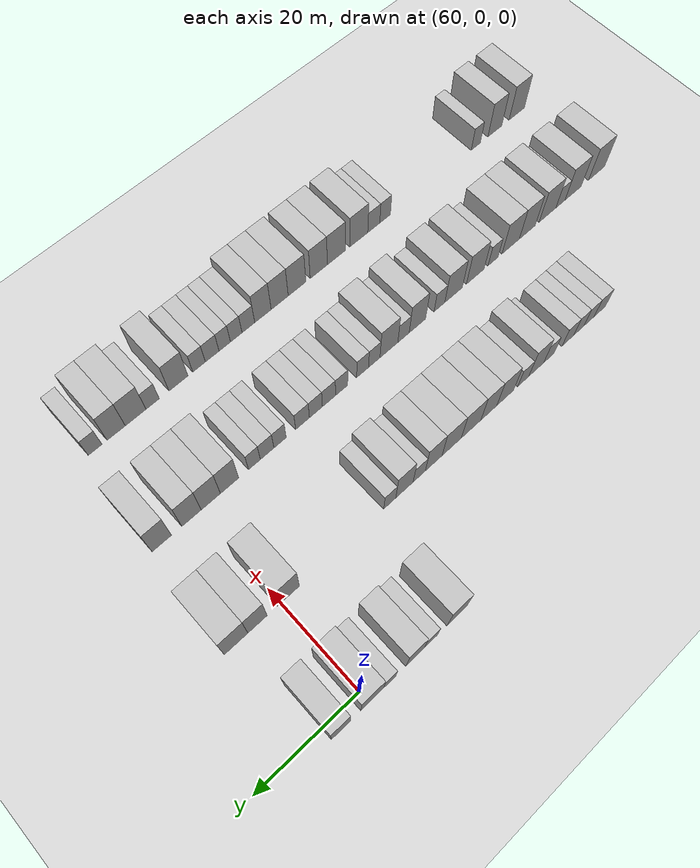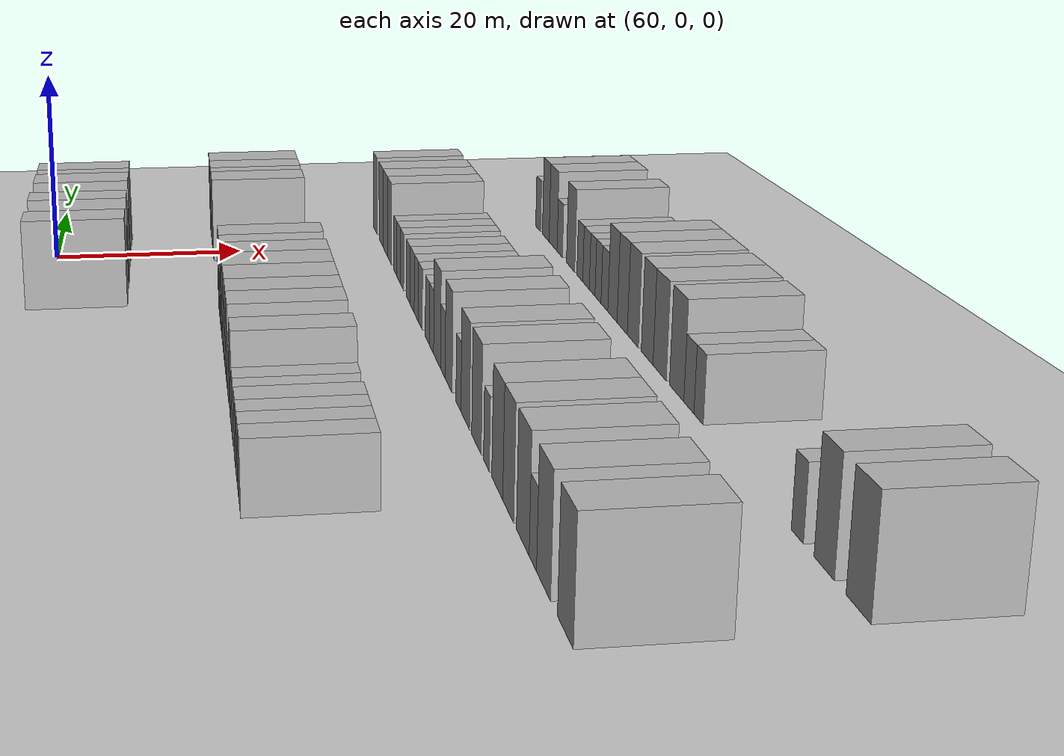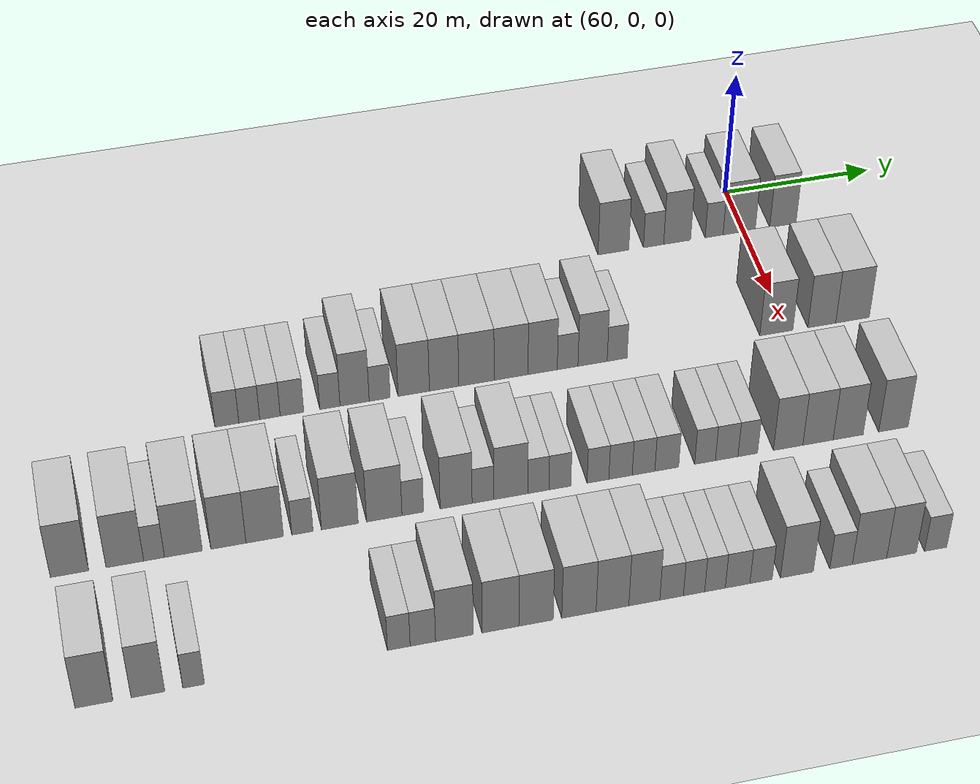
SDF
<sdf version="1.6">
 <world name="default">
  <include>
   <name>ground_plane_2</name>
   <uri>model://HANNAS_ground_plane</uri>
   <pose>100 0 0  0 0 0</pose>
  </include>
  <model name="building_432">
   <static>1</static>
   <pose>63.0000 -17.7571 0 0.000000 0.000000 0.000000</pose>
   <link name="link">
    <pose>0 0 4.50 0 0 0</pose>
    <collision name="collision"><geometry><box><size>10.0000 4.1584 9.0000</size></box></geometry></collision>
    <visual name="visual">
     <cast_shadows>0</cast_shadows>
     <geometry><box><size>10.0000 4.1584 9.0000</size></box></geometry>
     <material>
      <script>
       <uri>model://HANNAS_wall/materials/scripts</uri>
       <uri>model://HANNAS_wall/materials/textures</uri>
       <name>vrc/HANNAS_wall</name>
      </script>
     </material>
    </visual>
   </link>
  </model>
  <model name="building_433">
   <static>1</static>
   <pose>63.0000 -12.3101 0 0.000000 0.000000 0.000000</pose>
   <link name="link">
    <pose>0 0 3.00 0 0 0</pose>
    <collision name="collision"><geometry><box><size>10.0000 2.7355 6.0000</size></box></geometry></collision>
    <visual name="visual">
     <cast_shadows>0</cast_shadows>
     <geometry><box><size>10.0000 2.7355 6.0000</size></box></geometry>
     <material>
      <script>
       <uri>model://HANNAS_wall/materials/scripts</uri>
       <uri>model://HANNAS_wall/materials/textures</uri>
       <name>vrc/HANNAS_wall</name>
      </script>
     </material>
    </visual>
   </link>
  </model>
  <model name="building_434">
   <static>1</static>
   <pose>63.0000 -9.1037 0 0.000000 0.000000 0.000000</pose>
   <link name="link">
    <pose>0 0 4.50 0 0 0</pose>
    <collision name="collision"><geometry><box><size>10.0000 3.6774 9.0000</size></box></geometry></collision>
    <visual name="visual">
     <cast_shadows>0</cast_shadows>
     <geometry><box><size>10.0000 3.6774 9.0000</size></box></geometry>
     <material>
      <script>
       <uri>model://HANNAS_wall/materials/scripts</uri>
       <uri>model://HANNAS_wall/materials/textures</uri>
       <name>vrc/HANNAS_wall</name>
      </script>
     </material>
    </visual>
   </link>
  </model>
  <model name="building_435">
   <static>1</static>
   <pose>63.0000 -4.0407 0 0.000000 0.000000 0.000000</pose>
   <link name="link">
    <pose>0 0 3.00 0 0 0</pose>
    <collision name="collision"><geometry><box><size>10.0000 2.4487 6.0000</size></box></geometry></collision>
    <visual name="visual">
     <cast_shadows>0</cast_shadows>
     <geometry><box><size>10.0000 2.4487 6.0000</size></box></geometry>
     <material>
      <script>
       <uri>model://HANNAS_wall/materials/scripts</uri>
       <uri>model://HANNAS_wall/materials/textures</uri>
       <name>vrc/HANNAS_wall</name>
      </script>
     </material>
    </visual>
   </link>
  </model>
  <model name="building_436">
   <static>1</static>
   <pose>63.0000 -0.6007 0 0.000000 0.000000 0.000000</pose>
   <link name="link">
    <pose>0 0 4.50 0 0 0</pose>
    <collision name="collision"><geometry><box><size>10.0000 4.4313 9.0000</size></box></geometry></collision>
    <visual name="visual">
     <cast_shadows>0</cast_shadows>
     <geometry><box><size>10.0000 4.4313 9.0000</size></box></geometry>
     <material>
      <script>
       <uri>model://HANNAS_wall/materials/scripts</uri>
       <uri>model://HANNAS_wall/materials/textures</uri>
       <name>vrc/HANNAS_wall</name>
      </script>
     </material>
    </visual>
   </link>
  </model>
  <model name="building_437">
   <static>1</static>
   <pose>63.0000 5.4301 0 0.000000 0.000000 0.000000</pose>
   <link name="link">
    <pose>0 0 4.50 0 0 0</pose>
    <collision name="collision"><geometry><box><size>10.0000 3.6302 9.0000</size></box></geometry></collision>
    <visual name="visual">
     <cast_shadows>0</cast_shadows>
     <geometry><box><size>10.0000 3.6302 9.0000</size></box></geometry>
     <material>
      <script>
       <uri>model://HANNAS_wall/materials/scripts</uri>
       <uri>model://HANNAS_wall/materials/textures</uri>
       <name>vrc/HANNAS_wall</name>
      </script>
     </material>
    </visual>
   </link>
  </model>
  <model name="building_573">
   <static>1</static>
   <pose>82.0000 -71.5166 0 0.000000 0.000000 0.000000</pose>
   <link name="link">
    <pose>0 0 3.00 0 0 0</pose>
    <collision name="collision"><geometry><box><size>10.0000 2.9342 6.0000</size></box></geometry></collision>
    <visual name="visual">
     <cast_shadows>0</cast_shadows>
     <geometry><box><size>10.0000 2.9342 6.0000</size></box></geometry>
     <material>
      <script>
       <uri>model://HANNAS_wall/materials/scripts</uri>
       <uri>model://HANNAS_wall/materials/textures</uri>
       <name>vrc/HANNAS_wall</name>
      </script>
     </material>
    </visual>
   </link>
  </model>
  <model name="building_574">
   <static>1</static>
   <pose>82.0000 -68.7672 0 0.000000 0.000000 0.000000</pose>
   <link name="link">
    <pose>0 0 3.00 0 0 0</pose>
    <collision name="collision"><geometry><box><size>10.0000 2.5647 6.0000</size></box></geometry></collision>
    <visual name="visual">
     <cast_shadows>0</cast_shadows>
     <geometry><box><size>10.0000 2.5647 6.0000</size></box></geometry>
     <material>
      <script>
       <uri>model://HANNAS_wall/materials/scripts</uri>
       <uri>model://HANNAS_wall/materials/textures</uri>
       <name>vrc/HANNAS_wall</name>
      </script>
     </material>
    </visual>
   </link>
  </model>
  <model name="building_575">
   <static>1</static>
   <pose>82.0000 -66.2163 0 0.000000 0.000000 0.000000</pose>
   <link name="link">
    <pose>0 0 3.00 0 0 0</pose>
    <collision name="collision"><geometry><box><size>10.0000 2.5372 6.0000</size></box></geometry></collision>
    <visual name="visual">
     <cast_shadows>0</cast_shadows>
     <geometry><box><size>10.0000 2.5372 6.0000</size></box></geometry>
     <material>
      <script>
       <uri>model://HANNAS_wall/materials/scripts</uri>
       <uri>model://HANNAS_wall/materials/textures</uri>
       <name>vrc/HANNAS_wall</name>
      </script>
     </material>
    </visual>
   </link>
  </model>
  <model name="building_576">
   <static>1</static>
   <pose>82.0000 -63.4958 0 0.000000 0.000000 0.000000</pose>
   <link name="link">
    <pose>0 0 3.00 0 0 0</pose>
    <collision name="collision"><geometry><box><size>10.0000 2.9037 6.0000</size></box></geometry></collision>
    <visual name="visual">
     <cast_shadows>0</cast_shadows>
     <geometry><box><size>10.0000 2.9037 6.0000</size></box></geometry>
     <material>
      <script>
       <uri>model://HANNAS_wall/materials/scripts</uri>
       <uri>model://HANNAS_wall/materials/textures</uri>
       <name>vrc/HANNAS_wall</name>
      </script>
     </material>
    </visual>
   </link>
  </model>
  <model name="building_577">
   <static>1</static>
   <pose>82.0000 -58.7861 0 0.000000 0.000000 0.000000</pose>
   <link name="link">
    <pose>0 0 3.00 0 0 0</pose>
    <collision name="collision"><geometry><box><size>10.0000 2.5158 6.0000</size></box></geometry></collision>
    <visual name="visual">
     <cast_shadows>0</cast_shadows>
     <geometry><box><size>10.0000 2.5158 6.0000</size></box></geometry>
     <material>
      <script>
       <uri>model://HANNAS_wall/materials/scripts</uri>
       <uri>model://HANNAS_wall/materials/textures</uri>
       <name>vrc/HANNAS_wall</name>
      </script>
     </material>
    </visual>
   </link>
  </model>
  <model name="building_578">
   <static>1</static>
   <pose>82.0000 -55.7071 0 0.000000 0.000000 0.000000</pose>
   <link name="link">
    <pose>0 0 4.50 0 0 0</pose>
    <collision name="collision"><geometry><box><size>10.0000 3.6423 9.0000</size></box></geometry></collision>
    <visual name="visual">
     <cast_shadows>0</cast_shadows>
     <geometry><box><size>10.0000 3.6423 9.0000</size></box></geometry>
     <material>
      <script>
       <uri>model://HANNAS_wall/materials/scripts</uri>
       <uri>model://HANNAS_wall/materials/textures</uri>
       <name>vrc/HANNAS_wall</name>
      </script>
     </material>
    </visual>
   </link>
  </model>
  <model name="building_579">
   <static>1</static>
   <pose>82.0000 -52.5766 0 0.000000 0.000000 0.000000</pose>
   <link name="link">
    <pose>0 0 3.00 0 0 0</pose>
    <collision name="collision"><geometry><box><size>10.0000 2.6185 6.0000</size></box></geometry></collision>
    <visual name="visual">
     <cast_shadows>0</cast_shadows>
     <geometry><box><size>10.0000 2.6185 6.0000</size></box></geometry>
     <material>
      <script>
       <uri>model://HANNAS_wall/materials/scripts</uri>
       <uri>model://HANNAS_wall/materials/textures</uri>
       <name>vrc/HANNAS_wall</name>
      </script>
     </material>
    </visual>
   </link>
  </model>
  <model name="building_580">
   <static>1</static>
   <pose>82.0000 -48.2945 0 0.000000 0.000000 0.000000</pose>
   <link name="link">
    <pose>0 0 4.50 0 0 0</pose>
    <collision name="collision"><geometry><box><size>10.0000 3.9458 9.0000</size></box></geometry></collision>
    <visual name="visual">
     <cast_shadows>0</cast_shadows>
     <geometry><box><size>10.0000 3.9458 9.0000</size></box></geometry>
     <material>
      <script>
       <uri>model://HANNAS_wall/materials/scripts</uri>
       <uri>model://HANNAS_wall/materials/textures</uri>
       <name>vrc/HANNAS_wall</name>
      </script>
     </material>
    </visual>
   </link>
  </model>
  <model name="building_581">
   <static>1</static>
   <pose>82.0000 -44.4660 0 0.000000 0.000000 0.000000</pose>
   <link name="link">
    <pose>0 0 4.50 0 0 0</pose>
    <collision name="collision"><geometry><box><size>10.0000 3.7112 9.0000</size></box></geometry></collision>
    <visual name="visual">
     <cast_shadows>0</cast_shadows>
     <geometry><box><size>10.0000 3.7112 9.0000</size></box></geometry>
     <material>
      <script>
       <uri>model://HANNAS_wall/materials/scripts</uri>
       <uri>model://HANNAS_wall/materials/textures</uri>
       <name>vrc/HANNAS_wall</name>
      </script>
     </material>
    </visual>
   </link>
  </model>
  <model name="building_582">
   <static>1</static>
   <pose>82.0000 -40.3728 0 0.000000 0.000000 0.000000</pose>
   <link name="link">
    <pose>0 0 4.50 0 0 0</pose>
    <collision name="collision"><geometry><box><size>10.0000 4.4752 9.0000</size></box></geometry></collision>
    <visual name="visual">
     <cast_shadows>0</cast_shadows>
     <geometry><box><size>10.0000 4.4752 9.0000</size></box></geometry>
     <material>
      <script>
       <uri>model://HANNAS_wall/materials/scripts</uri>
       <uri>model://HANNAS_wall/materials/textures</uri>
       <name>vrc/HANNAS_wall</name>
      </script>
     </material>
    </visual>
   </link>
  </model>
  <model name="building_583">
   <static>1</static>
   <pose>82.0000 -35.9753 0 0.000000 0.000000 0.000000</pose>
   <link name="link">
    <pose>0 0 4.50 0 0 0</pose>
    <collision name="collision"><geometry><box><size>10.0000 4.3197 9.0000</size></box></geometry></collision>
    <visual name="visual">
     <cast_shadows>0</cast_shadows>
     <geometry><box><size>10.0000 4.3197 9.0000</size></box></geometry>
     <material>
      <script>
       <uri>model://HANNAS_wall/materials/scripts</uri>
       <uri>model://HANNAS_wall/materials/textures</uri>
       <name>vrc/HANNAS_wall</name>
      </script>
     </material>
    </visual>
   </link>
  </model>
  <model name="building_584">
   <static>1</static>
   <pose>82.0000 -31.9392 0 0.000000 0.000000 0.000000</pose>
   <link name="link">
    <pose>0 0 4.50 0 0 0</pose>
    <collision name="collision"><geometry><box><size>10.0000 3.7526 9.0000</size></box></geometry></collision>
    <visual name="visual">
     <cast_shadows>0</cast_shadows>
     <geometry><box><size>10.0000 3.7526 9.0000</size></box></geometry>
     <material>
      <script>
       <uri>model://HANNAS_wall/materials/scripts</uri>
       <uri>model://HANNAS_wall/materials/textures</uri>
       <name>vrc/HANNAS_wall</name>
      </script>
     </material>
    </visual>
   </link>
  </model>
  <model name="building_585">
   <static>1</static>
   <pose>82.0000 -28.7332 0 0.000000 0.000000 0.000000</pose>
   <link name="link">
    <pose>0 0 3.00 0 0 0</pose>
    <collision name="collision"><geometry><box><size>10.0000 2.6593 6.0000</size></box></geometry></collision>
    <visual name="visual">
     <cast_shadows>0</cast_shadows>
     <geometry><box><size>10.0000 2.6593 6.0000</size></box></geometry>
     <material>
      <script>
       <uri>model://HANNAS_wall/materials/scripts</uri>
       <uri>model://HANNAS_wall/materials/textures</uri>
       <name>vrc/HANNAS_wall</name>
      </script>
     </material>
    </visual>
   </link>
  </model>
  <model name="building_586">
   <static>1</static>
   <pose>82.0000 -25.5226 0 0.000000 0.000000 0.000000</pose>
   <link name="link">
    <pose>0 0 4.50 0 0 0</pose>
    <collision name="collision"><geometry><box><size>10.0000 3.7619 9.0000</size></box></geometry></collision>
    <visual name="visual">
     <cast_shadows>0</cast_shadows>
     <geometry><box><size>10.0000 3.7619 9.0000</size></box></geometry>
     <material>
      <script>
       <uri>model://HANNAS_wall/materials/scripts</uri>
       <uri>model://HANNAS_wall/materials/textures</uri>
       <name>vrc/HANNAS_wall</name>
      </script>
     </material>
    </visual>
   </link>
  </model>
  <model name="building_587">
   <static>1</static>
   <pose>82.0000 -22.3545 0 0.000000 0.000000 0.000000</pose>
   <link name="link">
    <pose>0 0 3.00 0 0 0</pose>
    <collision name="collision"><geometry><box><size>10.0000 2.5743 6.0000</size></box></geometry></collision>
    <visual name="visual">
     <cast_shadows>0</cast_shadows>
     <geometry><box><size>10.0000 2.5743 6.0000</size></box></geometry>
     <material>
      <script>
       <uri>model://HANNAS_wall/materials/scripts</uri>
       <uri>model://HANNAS_wall/materials/textures</uri>
       <name>vrc/HANNAS_wall</name>
      </script>
     </material>
    </visual>
   </link>
  </model>
  <model name="building_588">
   <static>1</static>
   <pose>82.0000 -1.5267 0 0.000000 0.000000 0.000000</pose>
   <link name="link">
    <pose>0 0 4.50 0 0 0</pose>
    <collision name="collision"><geometry><box><size>10.0000 4.3604 9.0000</size></box></geometry></collision>
    <visual name="visual">
     <cast_shadows>0</cast_shadows>
     <geometry><box><size>10.0000 4.3604 9.0000</size></box></geometry>
     <material>
      <script>
       <uri>model://HANNAS_wall/materials/scripts</uri>
       <uri>model://HANNAS_wall/materials/textures</uri>
       <name>vrc/HANNAS_wall</name>
      </script>
     </material>
    </visual>
   </link>
  </model>
  <model name="building_589">
   <static>1</static>
   <pose>82.0000 4.5028 0 0.000000 0.000000 0.000000</pose>
   <link name="link">
    <pose>0 0 4.50 0 0 0</pose>
    <collision name="collision"><geometry><box><size>10.0000 3.6985 9.0000</size></box></geometry></collision>
    <visual name="visual">
     <cast_shadows>0</cast_shadows>
     <geometry><box><size>10.0000 3.6985 9.0000</size></box></geometry>
     <material>
      <script>
       <uri>model://HANNAS_wall/materials/scripts</uri>
       <uri>model://HANNAS_wall/materials/textures</uri>
       <name>vrc/HANNAS_wall</name>
      </script>
     </material>
    </visual>
   </link>
  </model>
  <model name="building_590">
   <static>1</static>
   <pose>82.0000 8.5935 0 0.000000 0.000000 0.000000</pose>
   <link name="link">
    <pose>0 0 4.50 0 0 0</pose>
    <collision name="collision"><geometry><box><size>10.0000 4.4828 9.0000</size></box></geometry></collision>
    <visual name="visual">
     <cast_shadows>0</cast_shadows>
     <geometry><box><size>10.0000 4.4828 9.0000</size></box></geometry>
     <material>
      <script>
       <uri>model://HANNAS_wall/materials/scripts</uri>
       <uri>model://HANNAS_wall/materials/textures</uri>
       <name>vrc/HANNAS_wall</name>
      </script>
     </material>
    </visual>
   </link>
  </model>
  <model name="building_725">
   <static>1</static>
   <pose>101.0000 -92.6124 0 0.000000 0.000000 0.000000</pose>
   <link name="link">
    <pose>0 0 4.50 0 0 0</pose>
    <collision name="collision"><geometry><box><size>10.0000 4.3998 9.0000</size></box></geometry></collision>
    <visual name="visual">
     <cast_shadows>0</cast_shadows>
     <geometry><box><size>10.0000 4.3998 9.0000</size></box></geometry>
     <material>
      <script>
       <uri>model://HANNAS_wall/materials/scripts</uri>
       <uri>model://HANNAS_wall/materials/textures</uri>
       <name>vrc/HANNAS_wall</name>
      </script>
     </material>
    </visual>
   </link>
  </model>
  <model name="building_726">
   <static>1</static>
   <pose>101.0000 -86.2340 0 0.000000 0.000000 0.000000</pose>
   <link name="link">
    <pose>0 0 4.50 0 0 0</pose>
    <collision name="collision"><geometry><box><size>10.0000 4.3569 9.0000</size></box></geometry></collision>
    <visual name="visual">
     <cast_shadows>0</cast_shadows>
     <geometry><box><size>10.0000 4.3569 9.0000</size></box></geometry>
     <material>
      <script>
       <uri>model://HANNAS_wall/materials/scripts</uri>
       <uri>model://HANNAS_wall/materials/textures</uri>
       <name>vrc/HANNAS_wall</name>
      </script>
     </material>
    </visual>
   </link>
  </model>
  <model name="building_727">
   <static>1</static>
   <pose>101.0000 -82.8504 0 0.000000 0.000000 0.000000</pose>
   <link name="link">
    <pose>0 0 3.00 0 0 0</pose>
    <collision name="collision"><geometry><box><size>10.0000 2.4102 6.0000</size></box></geometry></collision>
    <visual name="visual">
     <cast_shadows>0</cast_shadows>
     <geometry><box><size>10.0000 2.4102 6.0000</size></box></geometry>
     <material>
      <script>
       <uri>model://HANNAS_wall/materials/scripts</uri>
       <uri>model://HANNAS_wall/materials/textures</uri>
       <name>vrc/HANNAS_wall</name>
      </script>
     </material>
    </visual>
   </link>
  </model>
  <model name="building_728">
   <static>1</static>
   <pose>101.0000 -79.4442 0 0.000000 0.000000 0.000000</pose>
   <link name="link">
    <pose>0 0 4.50 0 0 0</pose>
    <collision name="collision"><geometry><box><size>10.0000 4.4023 9.0000</size></box></geometry></collision>
    <visual name="visual">
     <cast_shadows>0</cast_shadows>
     <geometry><box><size>10.0000 4.4023 9.0000</size></box></geometry>
     <material>
      <script>
       <uri>model://HANNAS_wall/materials/scripts</uri>
       <uri>model://HANNAS_wall/materials/textures</uri>
       <name>vrc/HANNAS_wall</name>
      </script>
     </material>
    </visual>
   </link>
  </model>
  <model name="building_729">
   <static>1</static>
   <pose>101.0000 -74.1869 0 0.000000 0.000000 0.000000</pose>
   <link name="link">
    <pose>0 0 4.50 0 0 0</pose>
    <collision name="collision"><geometry><box><size>10.0000 4.1122 9.0000</size></box></geometry></collision>
    <visual name="visual">
     <cast_shadows>0</cast_shadows>
     <geometry><box><size>10.0000 4.1122 9.0000</size></box></geometry>
     <material>
      <script>
       <uri>model://HANNAS_wall/materials/scripts</uri>
       <uri>model://HANNAS_wall/materials/textures</uri>
       <name>vrc/HANNAS_wall</name>
      </script>
     </material>
    </visual>
   </link>
  </model>
  <model name="building_730">
   <static>1</static>
   <pose>101.0000 -69.9293 0 0.000000 0.000000 0.000000</pose>
   <link name="link">
    <pose>0 0 4.50 0 0 0</pose>
    <collision name="collision"><geometry><box><size>10.0000 4.4031 9.0000</size></box></geometry></collision>
    <visual name="visual">
     <cast_shadows>0</cast_shadows>
     <geometry><box><size>10.0000 4.4031 9.0000</size></box></geometry>
     <material>
      <script>
       <uri>model://HANNAS_wall/materials/scripts</uri>
       <uri>model://HANNAS_wall/materials/textures</uri>
       <name>vrc/HANNAS_wall</name>
      </script>
     </material>
    </visual>
   </link>
  </model>
  <model name="building_731">
   <static>1</static>
   <pose>101.0000 -65.4733 0 0.000000 0.000000 0.000000</pose>
   <link name="link">
    <pose>0 0 3.00 0 0 0</pose>
    <collision name="collision"><geometry><box><size>10.0000 2.5089 6.0000</size></box></geometry></collision>
    <visual name="visual">
     <cast_shadows>0</cast_shadows>
     <geometry><box><size>10.0000 2.5089 6.0000</size></box></geometry>
     <material>
      <script>
       <uri>model://HANNAS_wall/materials/scripts</uri>
       <uri>model://HANNAS_wall/materials/textures</uri>
       <name>vrc/HANNAS_wall</name>
      </script>
     </material>
    </visual>
   </link>
  </model>
  <model name="building_732">
   <static>1</static>
   <pose>101.0000 -61.0356 0 0.000000 0.000000 0.000000</pose>
   <link name="link">
    <pose>0 0 4.50 0 0 0</pose>
    <collision name="collision"><geometry><box><size>10.0000 4.3665 9.0000</size></box></geometry></collision>
    <visual name="visual">
     <cast_shadows>0</cast_shadows>
     <geometry><box><size>10.0000 4.3665 9.0000</size></box></geometry>
     <material>
      <script>
       <uri>model://HANNAS_wall/materials/scripts</uri>
       <uri>model://HANNAS_wall/materials/textures</uri>
       <name>vrc/HANNAS_wall</name>
      </script>
     </material>
    </visual>
   </link>
  </model>
  <model name="building_733">
   <static>1</static>
   <pose>101.0000 -55.7341 0 0.000000 0.000000 0.000000</pose>
   <link name="link">
    <pose>0 0 4.50 0 0 0</pose>
    <collision name="collision"><geometry><box><size>10.0000 4.2363 9.0000</size></box></geometry></collision>
    <visual name="visual">
     <cast_shadows>0</cast_shadows>
     <geometry><box><size>10.0000 4.2363 9.0000</size></box></geometry>
     <material>
      <script>
       <uri>model://HANNAS_wall/materials/scripts</uri>
       <uri>model://HANNAS_wall/materials/textures</uri>
       <name>vrc/HANNAS_wall</name>
      </script>
     </material>
    </visual>
   </link>
  </model>
  <model name="building_734">
   <static>1</static>
   <pose>101.0000 -52.3248 0 0.000000 0.000000 0.000000</pose>
   <link name="link">
    <pose>0 0 3.00 0 0 0</pose>
    <collision name="collision"><geometry><box><size>10.0000 2.5824 6.0000</size></box></geometry></collision>
    <visual name="visual">
     <cast_shadows>0</cast_shadows>
     <geometry><box><size>10.0000 2.5824 6.0000</size></box></geometry>
     <material>
      <script>
       <uri>model://HANNAS_wall/materials/scripts</uri>
       <uri>model://HANNAS_wall/materials/textures</uri>
       <name>vrc/HANNAS_wall</name>
      </script>
     </material>
    </visual>
   </link>
  </model>
  <model name="building_735">
   <static>1</static>
   <pose>101.0000 -47.1033 0 0.000000 0.000000 0.000000</pose>
   <link name="link">
    <pose>0 0 4.50 0 0 0</pose>
    <collision name="collision"><geometry><box><size>10.0000 3.8606 9.0000</size></box></geometry></collision>
    <visual name="visual">
     <cast_shadows>0</cast_shadows>
     <geometry><box><size>10.0000 3.8606 9.0000</size></box></geometry>
     <material>
      <script>
       <uri>model://HANNAS_wall/materials/scripts</uri>
       <uri>model://HANNAS_wall/materials/textures</uri>
       <name>vrc/HANNAS_wall</name>
      </script>
     </material>
    </visual>
   </link>
  </model>
  <model name="building_736">
   <static>1</static>
   <pose>101.0000 -43.8539 0 0.000000 0.000000 0.000000</pose>
   <link name="link">
    <pose>0 0 3.00 0 0 0</pose>
    <collision name="collision"><geometry><box><size>10.0000 2.6380 6.0000</size></box></geometry></collision>
    <visual name="visual">
     <cast_shadows>0</cast_shadows>
     <geometry><box><size>10.0000 2.6380 6.0000</size></box></geometry>
     <material>
      <script>
       <uri>model://HANNAS_wall/materials/scripts</uri>
       <uri>model://HANNAS_wall/materials/textures</uri>
       <name>vrc/HANNAS_wall</name>
      </script>
     </material>
    </visual>
   </link>
  </model>
  <model name="building_737">
   <static>1</static>
   <pose>101.0000 -40.4781 0 0.000000 0.000000 0.000000</pose>
   <link name="link">
    <pose>0 0 4.50 0 0 0</pose>
    <collision name="collision"><geometry><box><size>10.0000 4.1135 9.0000</size></box></geometry></collision>
    <visual name="visual">
     <cast_shadows>0</cast_shadows>
     <geometry><box><size>10.0000 4.1135 9.0000</size></box></geometry>
     <material>
      <script>
       <uri>model://HANNAS_wall/materials/scripts</uri>
       <uri>model://HANNAS_wall/materials/textures</uri>
       <name>vrc/HANNAS_wall</name>
      </script>
     </material>
    </visual>
   </link>
  </model>
  <model name="building_738">
   <static>1</static>
   <pose>101.0000 -37.1306 0 0.000000 0.000000 0.000000</pose>
   <link name="link">
    <pose>0 0 3.00 0 0 0</pose>
    <collision name="collision"><geometry><box><size>10.0000 2.5815 6.0000</size></box></geometry></collision>
    <visual name="visual">
     <cast_shadows>0</cast_shadows>
     <geometry><box><size>10.0000 2.5815 6.0000</size></box></geometry>
     <material>
      <script>
       <uri>model://HANNAS_wall/materials/scripts</uri>
       <uri>model://HANNAS_wall/materials/textures</uri>
       <name>vrc/HANNAS_wall</name>
      </script>
     </material>
    </visual>
   </link>
  </model>
  <model name="building_739">
   <static>1</static>
   <pose>101.0000 -34.4963 0 0.000000 0.000000 0.000000</pose>
   <link name="link">
    <pose>0 0 3.00 0 0 0</pose>
    <collision name="collision"><geometry><box><size>10.0000 2.6871 6.0000</size></box></geometry></collision>
    <visual name="visual">
     <cast_shadows>0</cast_shadows>
     <geometry><box><size>10.0000 2.6871 6.0000</size></box></geometry>
     <material>
      <script>
       <uri>model://HANNAS_wall/materials/scripts</uri>
       <uri>model://HANNAS_wall/materials/textures</uri>
       <name>vrc/HANNAS_wall</name>
      </script>
     </material>
    </visual>
   </link>
  </model>
  <model name="building_740">
   <static>1</static>
   <pose>101.0000 -29.8143 0 0.000000 0.000000 0.000000</pose>
   <link name="link">
    <pose>0 0 3.00 0 0 0</pose>
    <collision name="collision"><geometry><box><size>10.0000 2.6769 6.0000</size></box></geometry></collision>
    <visual name="visual">
     <cast_shadows>0</cast_shadows>
     <geometry><box><size>10.0000 2.6769 6.0000</size></box></geometry>
     <material>
      <script>
       <uri>model://HANNAS_wall/materials/scripts</uri>
       <uri>model://HANNAS_wall/materials/textures</uri>
       <name>vrc/HANNAS_wall</name>
      </script>
     </material>
    </visual>
   </link>
  </model>
  <model name="building_741">
   <static>1</static>
   <pose>101.0000 -27.0326 0 0.000000 0.000000 0.000000</pose>
   <link name="link">
    <pose>0 0 3.00 0 0 0</pose>
    <collision name="collision"><geometry><box><size>10.0000 2.8863 6.0000</size></box></geometry></collision>
    <visual name="visual">
     <cast_shadows>0</cast_shadows>
     <geometry><box><size>10.0000 2.8863 6.0000</size></box></geometry>
     <material>
      <script>
       <uri>model://HANNAS_wall/materials/scripts</uri>
       <uri>model://HANNAS_wall/materials/textures</uri>
       <name>vrc/HANNAS_wall</name>
      </script>
     </material>
    </visual>
   </link>
  </model>
  <model name="building_742">
   <static>1</static>
   <pose>101.0000 -24.1850 0 0.000000 0.000000 0.000000</pose>
   <link name="link">
    <pose>0 0 3.00 0 0 0</pose>
    <collision name="collision"><geometry><box><size>10.0000 2.8089 6.0000</size></box></geometry></collision>
    <visual name="visual">
     <cast_shadows>0</cast_shadows>
     <geometry><box><size>10.0000 2.8089 6.0000</size></box></geometry>
     <material>
      <script>
       <uri>model://HANNAS_wall/materials/scripts</uri>
       <uri>model://HANNAS_wall/materials/textures</uri>
       <name>vrc/HANNAS_wall</name>
      </script>
     </material>
    </visual>
   </link>
  </model>
  <model name="building_743">
   <static>1</static>
   <pose>101.0000 -21.3042 0 0.000000 0.000000 0.000000</pose>
   <link name="link">
    <pose>0 0 3.00 0 0 0</pose>
    <collision name="collision"><geometry><box><size>10.0000 2.9528 6.0000</size></box></geometry></collision>
    <visual name="visual">
     <cast_shadows>0</cast_shadows>
     <geometry><box><size>10.0000 2.9528 6.0000</size></box></geometry>
     <material>
      <script>
       <uri>model://HANNAS_wall/materials/scripts</uri>
       <uri>model://HANNAS_wall/materials/textures</uri>
       <name>vrc/HANNAS_wall</name>
      </script>
     </material>
    </visual>
   </link>
  </model>
  <model name="building_744">
   <static>1</static>
   <pose>101.0000 -16.5339 0 0.000000 0.000000 0.000000</pose>
   <link name="link">
    <pose>0 0 3.00 0 0 0</pose>
    <collision name="collision"><geometry><box><size>10.0000 2.5878 6.0000</size></box></geometry></collision>
    <visual name="visual">
     <cast_shadows>0</cast_shadows>
     <geometry><box><size>10.0000 2.5878 6.0000</size></box></geometry>
     <material>
      <script>
       <uri>model://HANNAS_wall/materials/scripts</uri>
       <uri>model://HANNAS_wall/materials/textures</uri>
       <name>vrc/HANNAS_wall</name>
      </script>
     </material>
    </visual>
   </link>
  </model>
  <model name="building_745">
   <static>1</static>
   <pose>101.0000 -13.8236 0 0.000000 0.000000 0.000000</pose>
   <link name="link">
    <pose>0 0 3.00 0 0 0</pose>
    <collision name="collision"><geometry><box><size>10.0000 2.8328 6.0000</size></box></geometry></collision>
    <visual name="visual">
     <cast_shadows>0</cast_shadows>
     <geometry><box><size>10.0000 2.8328 6.0000</size></box></geometry>
     <material>
      <script>
       <uri>model://HANNAS_wall/materials/scripts</uri>
       <uri>model://HANNAS_wall/materials/textures</uri>
       <name>vrc/HANNAS_wall</name>
      </script>
     </material>
    </visual>
   </link>
  </model>
  <model name="building_746">
   <static>1</static>
   <pose>101.0000 -11.1784 0 0.000000 0.000000 0.000000</pose>
   <link name="link">
    <pose>0 0 3.00 0 0 0</pose>
    <collision name="collision"><geometry><box><size>10.0000 2.4577 6.0000</size></box></geometry></collision>
    <visual name="visual">
     <cast_shadows>0</cast_shadows>
     <geometry><box><size>10.0000 2.4577 6.0000</size></box></geometry>
     <material>
      <script>
       <uri>model://HANNAS_wall/materials/scripts</uri>
       <uri>model://HANNAS_wall/materials/textures</uri>
       <name>vrc/HANNAS_wall</name>
      </script>
     </material>
    </visual>
   </link>
  </model>
  <model name="building_747">
   <static>1</static>
   <pose>101.0000 -6.0897 0 0.000000 0.000000 0.000000</pose>
   <link name="link">
    <pose>0 0 4.50 0 0 0</pose>
    <collision name="collision"><geometry><box><size>10.0000 3.7197 9.0000</size></box></geometry></collision>
    <visual name="visual">
     <cast_shadows>0</cast_shadows>
     <geometry><box><size>10.0000 3.7197 9.0000</size></box></geometry>
     <material>
      <script>
       <uri>model://HANNAS_wall/materials/scripts</uri>
       <uri>model://HANNAS_wall/materials/textures</uri>
       <name>vrc/HANNAS_wall</name>
      </script>
     </material>
    </visual>
   </link>
  </model>
  <model name="building_748">
   <static>1</static>
   <pose>101.0000 -2.3085 0 0.000000 0.000000 0.000000</pose>
   <link name="link">
    <pose>0 0 4.50 0 0 0</pose>
    <collision name="collision"><geometry><box><size>10.0000 3.8426 9.0000</size></box></geometry></collision>
    <visual name="visual">
     <cast_shadows>0</cast_shadows>
     <geometry><box><size>10.0000 3.8426 9.0000</size></box></geometry>
     <material>
      <script>
       <uri>model://HANNAS_wall/materials/scripts</uri>
       <uri>model://HANNAS_wall/materials/textures</uri>
       <name>vrc/HANNAS_wall</name>
      </script>
     </material>
    </visual>
   </link>
  </model>
  <model name="building_749">
   <static>1</static>
   <pose>101.0000 1.5240 0 0.000000 0.000000 0.000000</pose>
   <link name="link">
    <pose>0 0 4.50 0 0 0</pose>
    <collision name="collision"><geometry><box><size>10.0000 3.8225 9.0000</size></box></geometry></collision>
    <visual name="visual">
     <cast_shadows>0</cast_shadows>
     <geometry><box><size>10.0000 3.8225 9.0000</size></box></geometry>
     <material>
      <script>
       <uri>model://HANNAS_wall/materials/scripts</uri>
       <uri>model://HANNAS_wall/materials/textures</uri>
       <name>vrc/HANNAS_wall</name>
      </script>
     </material>
    </visual>
   </link>
  </model>
  <model name="building_750">
   <static>1</static>
   <pose>101.0000 7.3106 0 0.000000 0.000000 0.000000</pose>
   <link name="link">
    <pose>0 0 4.50 0 0 0</pose>
    <collision name="collision"><geometry><box><size>10.0000 3.7507 9.0000</size></box></geometry></collision>
    <visual name="visual">
     <cast_shadows>0</cast_shadows>
     <geometry><box><size>10.0000 3.7507 9.0000</size></box></geometry>
     <material>
      <script>
       <uri>model://HANNAS_wall/materials/scripts</uri>
       <uri>model://HANNAS_wall/materials/textures</uri>
       <name>vrc/HANNAS_wall</name>
      </script>
     </material>
    </visual>
   </link>
  </model>
  <model name="building_903">
   <static>1</static>
   <pose>120.0000 -91.9047 0 0.000000 0.000000 0.000000</pose>
   <link name="link">
    <pose>0 0 4.50 0 0 0</pose>
    <collision name="collision"><geometry><box><size>10.0000 4.1578 9.0000</size></box></geometry></collision>
    <visual name="visual">
     <cast_shadows>0</cast_shadows>
     <geometry><box><size>10.0000 4.1578 9.0000</size></box></geometry>
     <material>
      <script>
       <uri>model://HANNAS_wall/materials/scripts</uri>
       <uri>model://HANNAS_wall/materials/textures</uri>
       <name>vrc/HANNAS_wall</name>
      </script>
     </material>
    </visual>
   </link>
  </model>
  <model name="building_904">
   <static>1</static>
   <pose>120.0000 -85.9694 0 0.000000 0.000000 0.000000</pose>
   <link name="link">
    <pose>0 0 4.50 0 0 0</pose>
    <collision name="collision"><geometry><box><size>10.0000 3.7129 9.0000</size></box></geometry></collision>
    <visual name="visual">
     <cast_shadows>0</cast_shadows>
     <geometry><box><size>10.0000 3.7129 9.0000</size></box></geometry>
     <material>
      <script>
       <uri>model://HANNAS_wall/materials/scripts</uri>
       <uri>model://HANNAS_wall/materials/textures</uri>
       <name>vrc/HANNAS_wall</name>
      </script>
     </material>
    </visual>
   </link>
  </model>
  <model name="building_905">
   <static>1</static>
   <pose>120.0000 -80.9100 0 0.000000 0.000000 0.000000</pose>
   <link name="link">
    <pose>0 0 3.00 0 0 0</pose>
    <collision name="collision"><geometry><box><size>10.0000 2.4059 6.0000</size></box></geometry></collision>
    <visual name="visual">
     <cast_shadows>0</cast_shadows>
     <geometry><box><size>10.0000 2.4059 6.0000</size></box></geometry>
     <material>
      <script>
       <uri>model://HANNAS_wall/materials/scripts</uri>
       <uri>model://HANNAS_wall/materials/textures</uri>
       <name>vrc/HANNAS_wall</name>
      </script>
     </material>
    </visual>
   </link>
  </model>
  <model name="building_906">
   <static>1</static>
   <pose>120.0000 -57.8287 0 0.000000 0.000000 0.000000</pose>
   <link name="link">
    <pose>0 0 3.00 0 0 0</pose>
    <collision name="collision"><geometry><box><size>10.0000 2.5855 6.0000</size></box></geometry></collision>
    <visual name="visual">
     <cast_shadows>0</cast_shadows>
     <geometry><box><size>10.0000 2.5855 6.0000</size></box></geometry>
     <material>
      <script>
       <uri>model://HANNAS_wall/materials/scripts</uri>
       <uri>model://HANNAS_wall/materials/textures</uri>
       <name>vrc/HANNAS_wall</name>
      </script>
     </material>
    </visual>
   </link>
  </model>
  <model name="building_907">
   <static>1</static>
   <pose>120.0000 -55.0797 0 0.000000 0.000000 0.000000</pose>
   <link name="link">
    <pose>0 0 3.00 0 0 0</pose>
    <collision name="collision"><geometry><box><size>10.0000 2.9123 6.0000</size></box></geometry></collision>
    <visual name="visual">
     <cast_shadows>0</cast_shadows>
     <geometry><box><size>10.0000 2.9123 6.0000</size></box></geometry>
     <material>
      <script>
       <uri>model://HANNAS_wall/materials/scripts</uri>
       <uri>model://HANNAS_wall/materials/textures</uri>
       <name>vrc/HANNAS_wall</name>
      </script>
     </material>
    </visual>
   </link>
  </model>
  <model name="building_908">
   <static>1</static>
   <pose>120.0000 -51.4548 0 0.000000 0.000000 0.000000</pose>
   <link name="link">
    <pose>0 0 4.50 0 0 0</pose>
    <collision name="collision"><geometry><box><size>10.0000 4.3374 9.0000</size></box></geometry></collision>
    <visual name="visual">
     <cast_shadows>0</cast_shadows>
     <geometry><box><size>10.0000 4.3374 9.0000</size></box></geometry>
     <material>
      <script>
       <uri>model://HANNAS_wall/materials/scripts</uri>
       <uri>model://HANNAS_wall/materials/textures</uri>
       <name>vrc/HANNAS_wall</name>
      </script>
     </material>
    </visual>
   </link>
  </model>
  <model name="building_909">
   <static>1</static>
   <pose>120.0000 -46.1550 0 0.000000 0.000000 0.000000</pose>
   <link name="link">
    <pose>0 0 4.50 0 0 0</pose>
    <collision name="collision"><geometry><box><size>10.0000 4.2622 9.0000</size></box></geometry></collision>
    <visual name="visual">
     <cast_shadows>0</cast_shadows>
     <geometry><box><size>10.0000 4.2622 9.0000</size></box></geometry>
     <material>
      <script>
       <uri>model://HANNAS_wall/materials/scripts</uri>
       <uri>model://HANNAS_wall/materials/textures</uri>
       <name>vrc/HANNAS_wall</name>
      </script>
     </material>
    </visual>
   </link>
  </model>
  <model name="building_910">
   <static>1</static>
   <pose>120.0000 -42.0289 0 0.000000 0.000000 0.000000</pose>
   <link name="link">
    <pose>0 0 4.50 0 0 0</pose>
    <collision name="collision"><geometry><box><size>10.0000 3.9901 9.0000</size></box></geometry></collision>
    <visual name="visual">
     <cast_shadows>0</cast_shadows>
     <geometry><box><size>10.0000 3.9901 9.0000</size></box></geometry>
     <material>
      <script>
       <uri>model://HANNAS_wall/materials/scripts</uri>
       <uri>model://HANNAS_wall/materials/textures</uri>
       <name>vrc/HANNAS_wall</name>
      </script>
     </material>
    </visual>
   </link>
  </model>
  <model name="building_911">
   <static>1</static>
   <pose>120.0000 -37.0280 0 0.000000 0.000000 0.000000</pose>
   <link name="link">
    <pose>0 0 4.50 0 0 0</pose>
    <collision name="collision"><geometry><box><size>10.0000 4.0116 9.0000</size></box></geometry></collision>
    <visual name="visual">
     <cast_shadows>0</cast_shadows>
     <geometry><box><size>10.0000 4.0116 9.0000</size></box></geometry>
     <material>
      <script>
       <uri>model://HANNAS_wall/materials/scripts</uri>
       <uri>model://HANNAS_wall/materials/textures</uri>
       <name>vrc/HANNAS_wall</name>
      </script>
     </material>
    </visual>
   </link>
  </model>
  <model name="building_912">
   <static>1</static>
   <pose>120.0000 -33.0991 0 0.000000 0.000000 0.000000</pose>
   <link name="link">
    <pose>0 0 4.50 0 0 0</pose>
    <collision name="collision"><geometry><box><size>10.0000 3.8462 9.0000</size></box></geometry></collision>
    <visual name="visual">
     <cast_shadows>0</cast_shadows>
     <geometry><box><size>10.0000 3.8462 9.0000</size></box></geometry>
     <material>
      <script>
       <uri>model://HANNAS_wall/materials/scripts</uri>
       <uri>model://HANNAS_wall/materials/textures</uri>
       <name>vrc/HANNAS_wall</name>
      </script>
     </material>
    </visual>
   </link>
  </model>
  <model name="building_913">
   <static>1</static>
   <pose>120.0000 -29.3523 0 0.000000 0.000000 0.000000</pose>
   <link name="link">
    <pose>0 0 4.50 0 0 0</pose>
    <collision name="collision"><geometry><box><size>10.0000 3.6475 9.0000</size></box></geometry></collision>
    <visual name="visual">
     <cast_shadows>0</cast_shadows>
     <geometry><box><size>10.0000 3.6475 9.0000</size></box></geometry>
     <material>
      <script>
       <uri>model://HANNAS_wall/materials/scripts</uri>
       <uri>model://HANNAS_wall/materials/textures</uri>
       <name>vrc/HANNAS_wall</name>
      </script>
     </material>
    </visual>
   </link>
  </model>
  <model name="building_914">
   <static>1</static>
   <pose>120.0000 -26.1309 0 0.000000 0.000000 0.000000</pose>
   <link name="link">
    <pose>0 0 3.00 0 0 0</pose>
    <collision name="collision"><geometry><box><size>10.0000 2.7954 6.0000</size></box></geometry></collision>
    <visual name="visual">
     <cast_shadows>0</cast_shadows>
     <geometry><box><size>10.0000 2.7954 6.0000</size></box></geometry>
     <material>
      <script>
       <uri>model://HANNAS_wall/materials/scripts</uri>
       <uri>model://HANNAS_wall/materials/textures</uri>
       <name>vrc/HANNAS_wall</name>
      </script>
     </material>
    </visual>
   </link>
  </model>
  <model name="building_915">
   <static>1</static>
   <pose>120.0000 -23.4720 0 0.000000 0.000000 0.000000</pose>
   <link name="link">
    <pose>0 0 3.00 0 0 0</pose>
    <collision name="collision"><geometry><box><size>10.0000 2.5223 6.0000</size></box></geometry></collision>
    <visual name="visual">
     <cast_shadows>0</cast_shadows>
     <geometry><box><size>10.0000 2.5223 6.0000</size></box></geometry>
     <material>
      <script>
       <uri>model://HANNAS_wall/materials/scripts</uri>
       <uri>model://HANNAS_wall/materials/textures</uri>
       <name>vrc/HANNAS_wall</name>
      </script>
     </material>
    </visual>
   </link>
  </model>
  <model name="building_916">
   <static>1</static>
   <pose>120.0000 -20.9793 0 0.000000 0.000000 0.000000</pose>
   <link name="link">
    <pose>0 0 3.00 0 0 0</pose>
    <collision name="collision"><geometry><box><size>10.0000 2.4632 6.0000</size></box></geometry></collision>
    <visual name="visual">
     <cast_shadows>0</cast_shadows>
     <geometry><box><size>10.0000 2.4632 6.0000</size></box></geometry>
     <material>
      <script>
       <uri>model://HANNAS_wall/materials/scripts</uri>
       <uri>model://HANNAS_wall/materials/textures</uri>
       <name>vrc/HANNAS_wall</name>
      </script>
     </material>
    </visual>
   </link>
  </model>
  <model name="building_917">
   <static>1</static>
   <pose>120.0000 -18.2808 0 0.000000 0.000000 0.000000</pose>
   <link name="link">
    <pose>0 0 3.00 0 0 0</pose>
    <collision name="collision"><geometry><box><size>10.0000 2.9337 6.0000</size></box></geometry></collision>
    <visual name="visual">
     <cast_shadows>0</cast_shadows>
     <geometry><box><size>10.0000 2.9337 6.0000</size></box></geometry>
     <material>
      <script>
       <uri>model://HANNAS_wall/materials/scripts</uri>
       <uri>model://HANNAS_wall/materials/textures</uri>
       <name>vrc/HANNAS_wall</name>
      </script>
     </material>
    </visual>
   </link>
  </model>
  <model name="building_918">
   <static>1</static>
   <pose>120.0000 -15.4788 0 0.000000 0.000000 0.000000</pose>
   <link name="link">
    <pose>0 0 3.00 0 0 0</pose>
    <collision name="collision"><geometry><box><size>10.0000 2.6703 6.0000</size></box></geometry></collision>
    <visual name="visual">
     <cast_shadows>0</cast_shadows>
     <geometry><box><size>10.0000 2.6703 6.0000</size></box></geometry>
     <material>
      <script>
       <uri>model://HANNAS_wall/materials/scripts</uri>
       <uri>model://HANNAS_wall/materials/textures</uri>
       <name>vrc/HANNAS_wall</name>
      </script>
     </material>
    </visual>
   </link>
  </model>
  <model name="building_919">
   <static>1</static>
   <pose>120.0000 -11.1665 0 0.000000 0.000000 0.000000</pose>
   <link name="link">
    <pose>0 0 4.50 0 0 0</pose>
    <collision name="collision"><geometry><box><size>10.0000 3.9543 9.0000</size></box></geometry></collision>
    <visual name="visual">
     <cast_shadows>0</cast_shadows>
     <geometry><box><size>10.0000 3.9543 9.0000</size></box></geometry>
     <material>
      <script>
       <uri>model://HANNAS_wall/materials/scripts</uri>
       <uri>model://HANNAS_wall/materials/textures</uri>
       <name>vrc/HANNAS_wall</name>
      </script>
     </material>
    </visual>
   </link>
  </model>
  <model name="building_920">
   <static>1</static>
   <pose>120.0000 -5.8231 0 0.000000 0.000000 0.000000</pose>
   <link name="link">
    <pose>0 0 3.00 0 0 0</pose>
    <collision name="collision"><geometry><box><size>10.0000 2.7325 6.0000</size></box></geometry></collision>
    <visual name="visual">
     <cast_shadows>0</cast_shadows>
     <geometry><box><size>10.0000 2.7325 6.0000</size></box></geometry>
     <material>
      <script>
       <uri>model://HANNAS_wall/materials/scripts</uri>
       <uri>model://HANNAS_wall/materials/textures</uri>
       <name>vrc/HANNAS_wall</name>
      </script>
     </material>
    </visual>
   </link>
  </model>
  <model name="building_921">
   <static>1</static>
   <pose>120.0000 -2.3714 0 0.000000 0.000000 0.000000</pose>
   <link name="link">
    <pose>0 0 4.50 0 0 0</pose>
    <collision name="collision"><geometry><box><size>10.0000 4.1710 9.0000</size></box></geometry></collision>
    <visual name="visual">
     <cast_shadows>0</cast_shadows>
     <geometry><box><size>10.0000 4.1710 9.0000</size></box></geometry>
     <material>
      <script>
       <uri>model://HANNAS_wall/materials/scripts</uri>
       <uri>model://HANNAS_wall/materials/textures</uri>
       <name>vrc/HANNAS_wall</name>
      </script>
     </material>
    </visual>
   </link>
  </model>
  <model name="building_922">
   <static>1</static>
   <pose>120.0000 1.5289 0 0.000000 0.000000 0.000000</pose>
   <link name="link">
    <pose>0 0 4.50 0 0 0</pose>
    <collision name="collision"><geometry><box><size>10.0000 3.6297 9.0000</size></box></geometry></collision>
    <visual name="visual">
     <cast_shadows>0</cast_shadows>
     <geometry><box><size>10.0000 3.6297 9.0000</size></box></geometry>
     <material>
      <script>
       <uri>model://HANNAS_wall/materials/scripts</uri>
       <uri>model://HANNAS_wall/materials/textures</uri>
       <name>vrc/HANNAS_wall</name>
      </script>
     </material>
    </visual>
   </link>
  </model>
  <model name="building_923">
   <static>1</static>
   <pose>120.0000 5.7057 0 0.000000 0.000000 0.000000</pose>
   <link name="link">
    <pose>0 0 3.00 0 0 0</pose>
    <collision name="collision"><geometry><box><size>10.0000 2.7237 6.0000</size></box></geometry></collision>
    <visual name="visual">
     <cast_shadows>0</cast_shadows>
     <geometry><box><size>10.0000 2.7237 6.0000</size></box></geometry>
     <material>
      <script>
       <uri>model://HANNAS_wall/materials/scripts</uri>
       <uri>model://HANNAS_wall/materials/textures</uri>
       <name>vrc/HANNAS_wall</name>
      </script>
     </material>
    </visual>
   </link>
  </model>
 </world>
</sdf>
